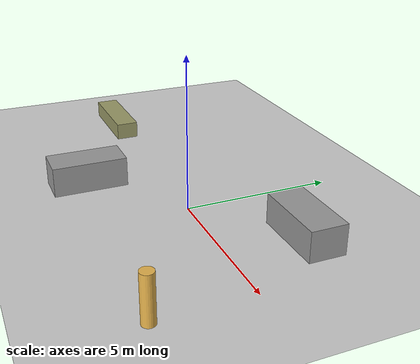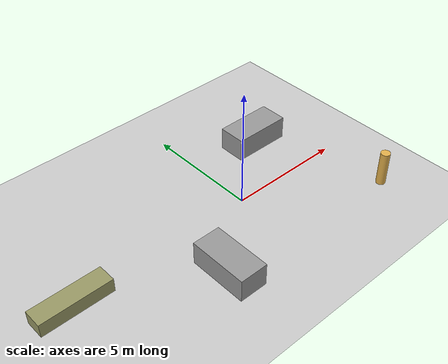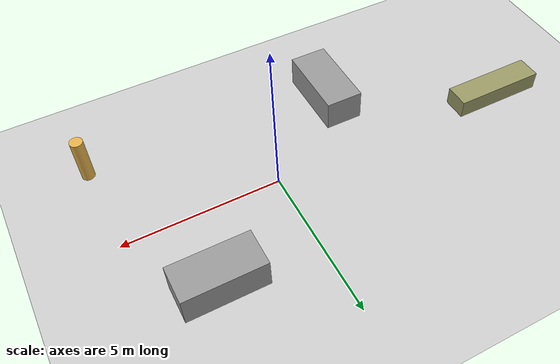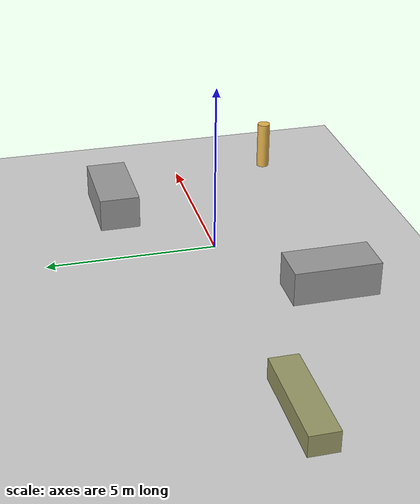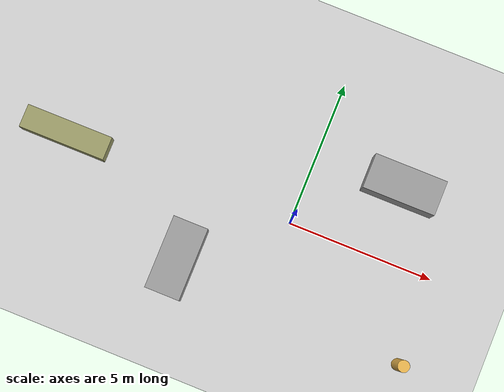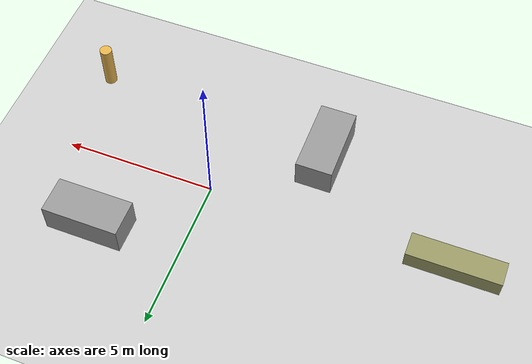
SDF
<?xml version="1.0"?>
<sdf version='1.7'>
  <world name='default'>
    <light name='sun' type='directional'>
      <cast_shadows>1</cast_shadows>
      <pose>0 0 10 0 -0 0</pose>
      <diffuse>0.8 0.8 0.8 1</diffuse>
      <specular>0.2 0.2 0.2 1</specular>
      <attenuation>
        <range>1000</range>
        <constant>0.9</constant>
        <linear>0.01</linear>
        <quadratic>0.001</quadratic>
      </attenuation>
      <direction>-0.5 0.1 -0.9</direction>
    </light>
    <model name='ground_plane'>
      <static>1</static>
      <link name='link'>
        <collision name='collision'>
          <geometry>
            <plane>
              <normal>0 0 1</normal>
              <size>100 100</size>
            </plane>
          </geometry>
          <surface>
            <contact>
              <collide_bitmask>65535</collide_bitmask>
              <ode/>
            </contact>
            <friction>
              <ode>
                <mu>100</mu>
                <mu2>50</mu2>
              </ode>
              <torsional>
                <ode/>
              </torsional>
            </friction>
            <bounce/>
          </surface>
          <max_contacts>10</max_contacts>
        </collision>
        <visual name='visual'>
          <cast_shadows>0</cast_shadows>
          <geometry>
            <plane>
              <normal>0 0 1</normal>
              <size>100 100</size>
            </plane>
          </geometry>
          <material>
            <script>
              <uri>file://media/materials/scripts/gazebo.material</uri>
              <name>Gazebo/Grey</name>
            </script>
          </material>
        </visual>
      </link>
    </model>
    <physics type='ode'>
      <max_step_size>0.01</max_step_size>
      <real_time_factor>1</real_time_factor>
      <real_time_update_rate>100</real_time_update_rate>
      <ode>
        <solver>
          <type>quick</type>
          <iters>150</iters>
          <precon_iters>0</precon_iters>
          <sor>1.4</sor>
          <use_dynamic_moi_rescaling>1</use_dynamic_moi_rescaling>
        </solver>
        <constraints>
          <cfm>1e-05</cfm>
          <erp>0.2</erp>
          <contact_max_correcting_vel>2000</contact_max_correcting_vel>
          <contact_surface_layer>0.01</contact_surface_layer>
        </constraints>
      </ode>
    </physics>

    <!-- ====== 内部静态障碍物 ====== -->
    <model name='box_1'>
      <static>1</static>
      <link name='link_0'>
        <pose>0 0 0 0 0 0</pose>
        <collision name='collision'>
          <geometry><box><size>2.5 1.2 1.0</size></box></geometry>
          <surface><friction><ode><mu>1</mu><mu2>1</mu2></ode></friction><contact><ode/></contact></surface>
          <max_contacts>10</max_contacts>
        </collision>
        <visual name='visual'>
          <geometry><box><size>2.5 1.2 1.0</size></box></geometry>
          <material><ambient>0.4 0.4 0.4 1</ambient><diffuse>0.6 0.6 0.6 1</diffuse></material>
        </visual>
      </link>
      <pose>3 2.5 0.5 0 0 0</pose>
    </model>
    <model name='box_2'>
      <static>1</static>
      <link name='link_0'>
        <pose>0 0 0 0 0 0</pose>
        <collision name='collision'>
          <geometry><box><size>2.5 1.2 1.0</size></box></geometry>
          <surface><friction><ode><mu>1</mu><mu2>1</mu2></ode></friction><contact><ode/></contact></surface>
          <max_contacts>10</max_contacts>
        </collision>
        <visual name='visual'>
          <geometry><box><size>2.5 1.2 1.0</size></box></geometry>
          <material><ambient>0.4 0.4 0.4 1</ambient><diffuse>0.6 0.6 0.6 1</diffuse></material>
        </visual>
      </link>
      <pose>-3 -2.5 0.5 0 0 1.57</pose>
    </model>
    <model name='cylinder_1'>
      <static>1</static>
      <link name='link_0'>
        <pose>0 0 0 0 0 0</pose>
        <collision name='collision'>
          <geometry><cylinder><radius>0.2</radius><length>1.5</length></cylinder></geometry>
          <surface><friction><ode><mu>1</mu><mu2>1</mu2></ode></friction><contact><ode/></contact></surface>
          <max_contacts>10</max_contacts>
        </collision>
        <visual name='visual'>
          <geometry><cylinder><radius>0.2</radius><length>1.5</length></cylinder></geometry>
          <material><ambient>0.8 0.6 0.2 1</ambient><diffuse>0.9 0.7 0.3 1</diffuse></material>
        </visual>
      </link>
      <pose>5 -3 0.75 0 0 0</pose>
    </model>
    <model name='barrier_1'>
      <static>1</static>
      <link name='link_0'>
        <pose>0 0 0 0 0 0</pose>
        <collision name='collision'>
          <geometry><box><size>3 0.8 0.6</size></box></geometry>
          <surface><friction><ode><mu>1</mu><mu2>1</mu2></ode></friction><contact><ode/></contact></surface>
          <max_contacts>10</max_contacts>
        </collision>
        <visual name='visual'>
          <geometry><box><size>3 0.8 0.6</size></box></geometry>
          <material><ambient>0.5 0.5 0.3 1</ambient><diffuse>0.6 0.6 0.4 1</diffuse></material>
        </visual>
      </link>
      <pose>-8 0 0.3 0 0 0</pose>
    </model>
  </world>
</sdf>
